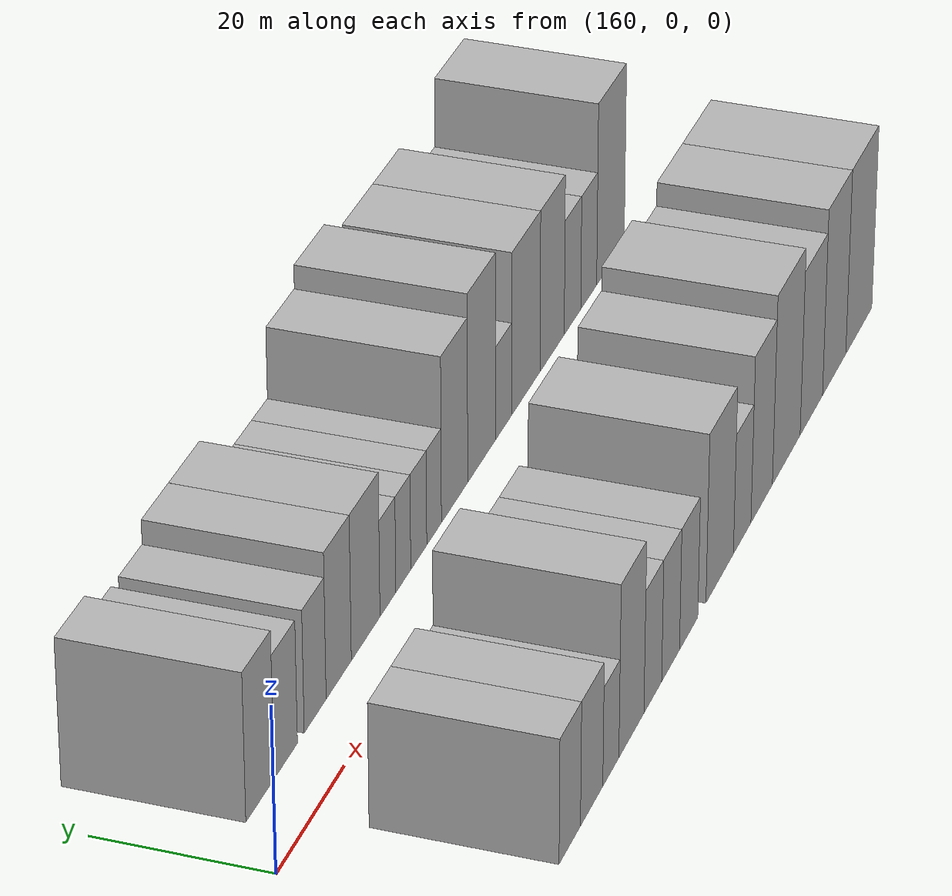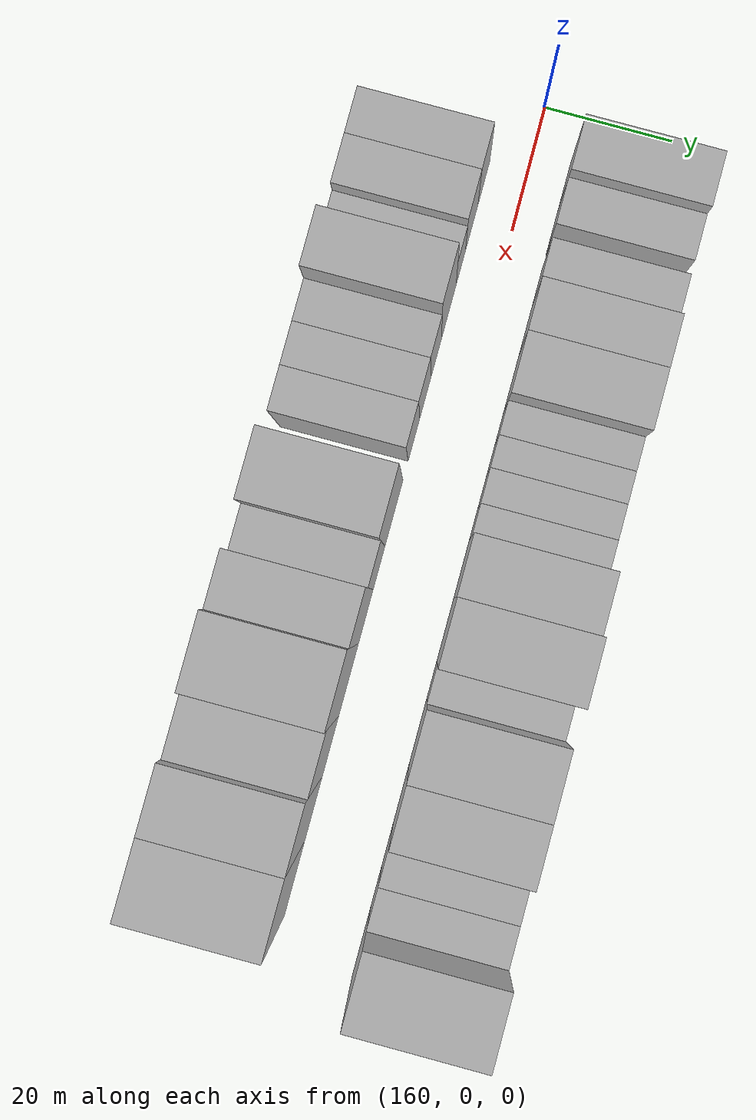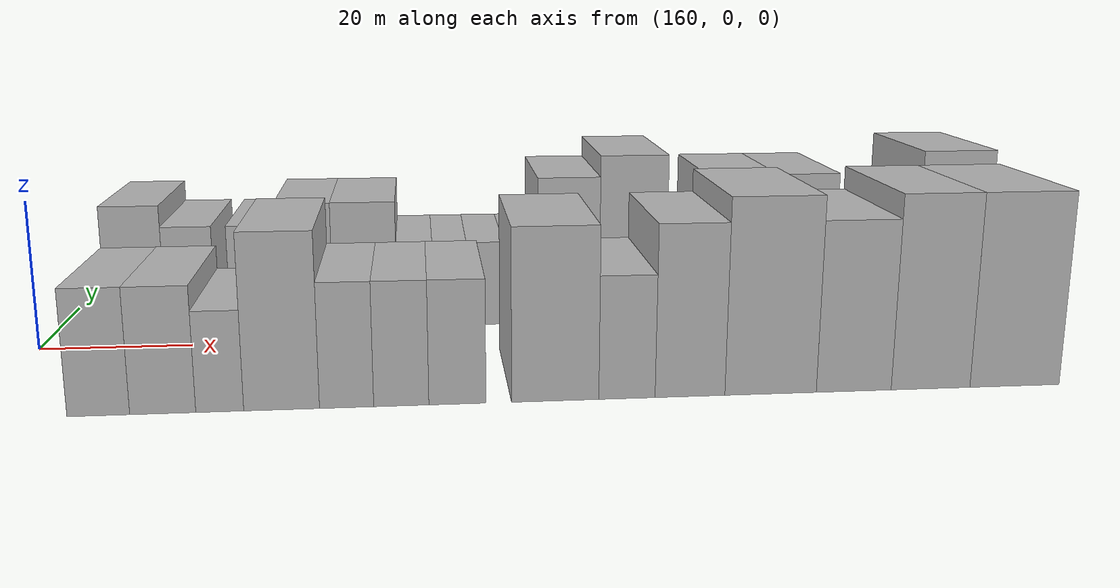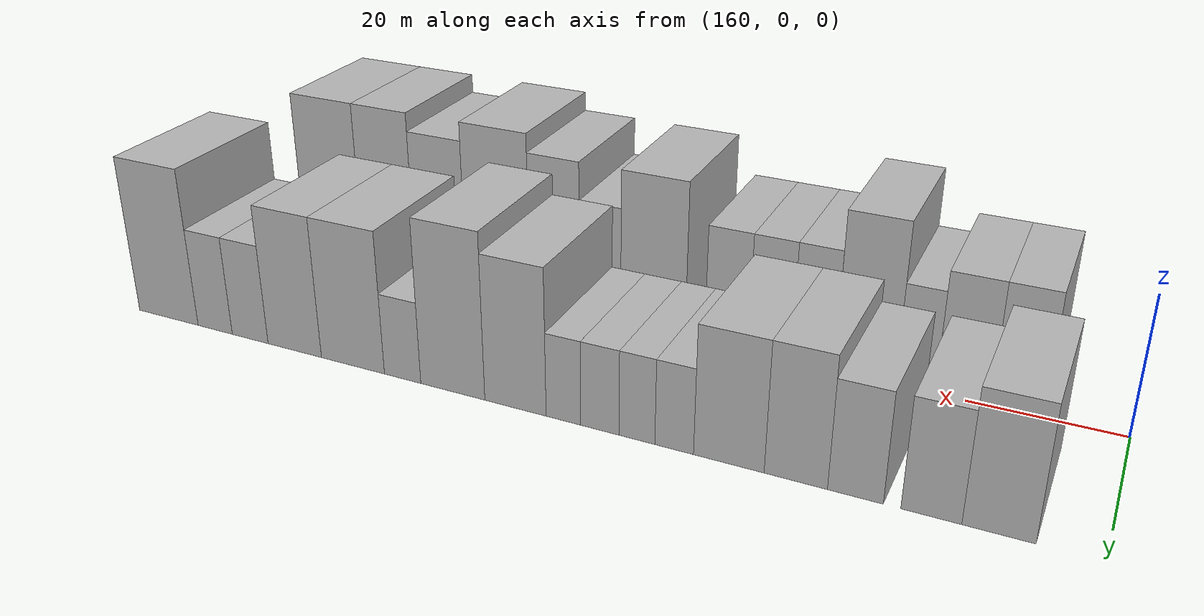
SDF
<sdf version="1.6">
 <world name="default">
  <model name="building_15">
   <static>1</static>
   <pose>171.3655 16.0000 0 0.000000 0.000000 1.570796</pose>
   <link name="link">
    <pose>0 0 9.00 0 0 0</pose>
    <collision name="collision"><geometry><box><size>20.0000 8.0276 18.0000</size></box></geometry></collision>
    <visual name="visual">
     <cast_shadows>0</cast_shadows>
     <geometry><box><size>20.0000 8.0276 18.0000</size></box></geometry>
     <material>
      <script>
       <uri>model://HANNAS_wall/materials/scripts</uri>
       <uri>model://HANNAS_wall/materials/textures</uri>
       <name>vrc/HANNAS_wall</name>
      </script>
     </material>
    </visual>
   </link>
  </model>
  <model name="building_16">
   <static>1</static>
   <pose>178.7961 16.0000 0 0.000000 0.000000 1.570796</pose>
   <link name="link">
    <pose>0 0 7.50 0 0 0</pose>
    <collision name="collision"><geometry><box><size>20.0000 6.8335 15.0000</size></box></geometry></collision>
    <visual name="visual">
     <cast_shadows>0</cast_shadows>
     <geometry><box><size>20.0000 6.8335 15.0000</size></box></geometry>
     <material>
      <script>
       <uri>model://HANNAS_wall/materials/scripts</uri>
       <uri>model://HANNAS_wall/materials/textures</uri>
       <name>vrc/HANNAS_wall</name>
      </script>
     </material>
    </visual>
   </link>
  </model>
  <model name="building_17">
   <static>1</static>
   <pose>187.4880 16.0000 0 0.000000 0.000000 1.570796</pose>
   <link name="link">
    <pose>0 0 7.50 0 0 0</pose>
    <collision name="collision"><geometry><box><size>20.0000 6.5502 15.0000</size></box></geometry></collision>
    <visual name="visual">
     <cast_shadows>0</cast_shadows>
     <geometry><box><size>20.0000 6.5502 15.0000</size></box></geometry>
     <material>
      <script>
       <uri>model://HANNAS_wall/materials/scripts</uri>
       <uri>model://HANNAS_wall/materials/textures</uri>
       <name>vrc/HANNAS_wall</name>
      </script>
     </material>
    </visual>
   </link>
  </model>
  <model name="building_18">
   <static>1</static>
   <pose>194.6058 16.0000 0 0.000000 0.000000 1.570796</pose>
   <link name="link">
    <pose>0 0 9.00 0 0 0</pose>
    <collision name="collision"><geometry><box><size>20.0000 7.6855 18.0000</size></box></geometry></collision>
    <visual name="visual">
     <cast_shadows>0</cast_shadows>
     <geometry><box><size>20.0000 7.6855 18.0000</size></box></geometry>
     <material>
      <script>
       <uri>model://HANNAS_wall/materials/scripts</uri>
       <uri>model://HANNAS_wall/materials/textures</uri>
       <name>vrc/HANNAS_wall</name>
      </script>
     </material>
    </visual>
   </link>
  </model>
  <model name="building_19">
   <static>1</static>
   <pose>202.9166 16.0000 0 0.000000 0.000000 1.570796</pose>
   <link name="link">
    <pose>0 0 9.00 0 0 0</pose>
    <collision name="collision"><geometry><box><size>20.0000 8.9360 18.0000</size></box></geometry></collision>
    <visual name="visual">
     <cast_shadows>0</cast_shadows>
     <geometry><box><size>20.0000 8.9360 18.0000</size></box></geometry>
     <material>
      <script>
       <uri>model://HANNAS_wall/materials/scripts</uri>
       <uri>model://HANNAS_wall/materials/textures</uri>
       <name>vrc/HANNAS_wall</name>
      </script>
     </material>
    </visual>
   </link>
  </model>
  <model name="building_20">
   <static>1</static>
   <pose>209.9119 16.0000 0 0.000000 0.000000 1.570796</pose>
   <link name="link">
    <pose>0 0 6.00 0 0 0</pose>
    <collision name="collision"><geometry><box><size>20.0000 5.0545 12.0000</size></box></geometry></collision>
    <visual name="visual">
     <cast_shadows>0</cast_shadows>
     <geometry><box><size>20.0000 5.0545 12.0000</size></box></geometry>
     <material>
      <script>
       <uri>model://HANNAS_wall/materials/scripts</uri>
       <uri>model://HANNAS_wall/materials/textures</uri>
       <name>vrc/HANNAS_wall</name>
      </script>
     </material>
    </visual>
   </link>
  </model>
  <model name="building_21">
   <static>1</static>
   <pose>214.8417 16.0000 0 0.000000 0.000000 1.570796</pose>
   <link name="link">
    <pose>0 0 6.00 0 0 0</pose>
    <collision name="collision"><geometry><box><size>20.0000 4.8051 12.0000</size></box></geometry></collision>
    <visual name="visual">
     <cast_shadows>0</cast_shadows>
     <geometry><box><size>20.0000 4.8051 12.0000</size></box></geometry>
     <material>
      <script>
       <uri>model://HANNAS_wall/materials/scripts</uri>
       <uri>model://HANNAS_wall/materials/textures</uri>
       <name>vrc/HANNAS_wall</name>
      </script>
     </material>
    </visual>
   </link>
  </model>
  <model name="building_22">
   <static>1</static>
   <pose>219.8590 16.0000 0 0.000000 0.000000 1.570796</pose>
   <link name="link">
    <pose>0 0 6.00 0 0 0</pose>
    <collision name="collision"><geometry><box><size>20.0000 5.2297 12.0000</size></box></geometry></collision>
    <visual name="visual">
     <cast_shadows>0</cast_shadows>
     <geometry><box><size>20.0000 5.2297 12.0000</size></box></geometry>
     <material>
      <script>
       <uri>model://HANNAS_wall/materials/scripts</uri>
       <uri>model://HANNAS_wall/materials/textures</uri>
       <name>vrc/HANNAS_wall</name>
      </script>
     </material>
    </visual>
   </link>
  </model>
  <model name="building_23">
   <static>1</static>
   <pose>224.9013 16.0000 0 0.000000 0.000000 1.570796</pose>
   <link name="link">
    <pose>0 0 6.00 0 0 0</pose>
    <collision name="collision"><geometry><box><size>20.0000 4.8548 12.0000</size></box></geometry></collision>
    <visual name="visual">
     <cast_shadows>0</cast_shadows>
     <geometry><box><size>20.0000 4.8548 12.0000</size></box></geometry>
     <material>
      <script>
       <uri>model://HANNAS_wall/materials/scripts</uri>
       <uri>model://HANNAS_wall/materials/textures</uri>
       <name>vrc/HANNAS_wall</name>
      </script>
     </material>
    </visual>
   </link>
  </model>
  <model name="building_24">
   <static>1</static>
   <pose>231.7651 16.0000 0 0.000000 0.000000 1.570796</pose>
   <link name="link">
    <pose>0 0 10.50 0 0 0</pose>
    <collision name="collision"><geometry><box><size>20.0000 8.8729 21.0000</size></box></geometry></collision>
    <visual name="visual">
     <cast_shadows>0</cast_shadows>
     <geometry><box><size>20.0000 8.8729 21.0000</size></box></geometry>
     <material>
      <script>
       <uri>model://HANNAS_wall/materials/scripts</uri>
       <uri>model://HANNAS_wall/materials/textures</uri>
       <name>vrc/HANNAS_wall</name>
      </script>
     </material>
    </visual>
   </link>
  </model>
  <model name="building_25">
   <static>1</static>
   <pose>241.0345 16.0000 0 0.000000 0.000000 1.570796</pose>
   <link name="link">
    <pose>0 0 12.00 0 0 0</pose>
    <collision name="collision"><geometry><box><size>20.0000 9.6660 24.0000</size></box></geometry></collision>
    <visual name="visual">
     <cast_shadows>0</cast_shadows>
     <geometry><box><size>20.0000 9.6660 24.0000</size></box></geometry>
     <material>
      <script>
       <uri>model://HANNAS_wall/materials/scripts</uri>
       <uri>model://HANNAS_wall/materials/textures</uri>
       <name>vrc/HANNAS_wall</name>
      </script>
     </material>
    </visual>
   </link>
  </model>
  <model name="building_26">
   <static>1</static>
   <pose>248.7030 16.0000 0 0.000000 0.000000 1.570796</pose>
   <link name="link">
    <pose>0 0 6.00 0 0 0</pose>
    <collision name="collision"><geometry><box><size>20.0000 5.6709 12.0000</size></box></geometry></collision>
    <visual name="visual">
     <cast_shadows>0</cast_shadows>
     <geometry><box><size>20.0000 5.6709 12.0000</size></box></geometry>
     <material>
      <script>
       <uri>model://HANNAS_wall/materials/scripts</uri>
       <uri>model://HANNAS_wall/materials/textures</uri>
       <name>vrc/HANNAS_wall</name>
      </script>
     </material>
    </visual>
   </link>
  </model>
  <model name="building_27">
   <static>1</static>
   <pose>256.6299 16.0000 0 0.000000 0.000000 1.570796</pose>
   <link name="link">
    <pose>0 0 10.50 0 0 0</pose>
    <collision name="collision"><geometry><box><size>20.0000 10.1831 21.0000</size></box></geometry></collision>
    <visual name="visual">
     <cast_shadows>0</cast_shadows>
     <geometry><box><size>20.0000 10.1831 21.0000</size></box></geometry>
     <material>
      <script>
       <uri>model://HANNAS_wall/materials/scripts</uri>
       <uri>model://HANNAS_wall/materials/textures</uri>
       <name>vrc/HANNAS_wall</name>
      </script>
     </material>
    </visual>
   </link>
  </model>
  <model name="building_28">
   <static>1</static>
   <pose>266.2097 16.0000 0 0.000000 0.000000 1.570796</pose>
   <link name="link">
    <pose>0 0 10.50 0 0 0</pose>
    <collision name="collision"><geometry><box><size>20.0000 8.9764 21.0000</size></box></geometry></collision>
    <visual name="visual">
     <cast_shadows>0</cast_shadows>
     <geometry><box><size>20.0000 8.9764 21.0000</size></box></geometry>
     <material>
      <script>
       <uri>model://HANNAS_wall/materials/scripts</uri>
       <uri>model://HANNAS_wall/materials/textures</uri>
       <name>vrc/HANNAS_wall</name>
      </script>
     </material>
    </visual>
   </link>
  </model>
  <model name="building_29">
   <static>1</static>
   <pose>273.8102 16.0000 0 0.000000 0.000000 1.570796</pose>
   <link name="link">
    <pose>0 0 7.50 0 0 0</pose>
    <collision name="collision"><geometry><box><size>20.0000 6.2247 15.0000</size></box></geometry></collision>
    <visual name="visual">
     <cast_shadows>0</cast_shadows>
     <geometry><box><size>20.0000 6.2247 15.0000</size></box></geometry>
     <material>
      <script>
       <uri>model://HANNAS_wall/materials/scripts</uri>
       <uri>model://HANNAS_wall/materials/textures</uri>
       <name>vrc/HANNAS_wall</name>
      </script>
     </material>
    </visual>
   </link>
  </model>
  <model name="building_30">
   <static>1</static>
   <pose>279.9654 16.0000 0 0.000000 0.000000 1.570796</pose>
   <link name="link">
    <pose>0 0 7.50 0 0 0</pose>
    <collision name="collision"><geometry><box><size>20.0000 6.0856 15.0000</size></box></geometry></collision>
    <visual name="visual">
     <cast_shadows>0</cast_shadows>
     <geometry><box><size>20.0000 6.0856 15.0000</size></box></geometry>
     <material>
      <script>
       <uri>model://HANNAS_wall/materials/scripts</uri>
       <uri>model://HANNAS_wall/materials/textures</uri>
       <name>vrc/HANNAS_wall</name>
      </script>
     </material>
    </visual>
   </link>
  </model>
  <model name="building_31">
   <static>1</static>
   <pose>288.3852 16.0000 0 0.000000 0.000000 1.570796</pose>
   <link name="link">
    <pose>0 0 12.00 0 0 0</pose>
    <collision name="collision"><geometry><box><size>20.0000 10.7540 24.0000</size></box></geometry></collision>
    <visual name="visual">
     <cast_shadows>0</cast_shadows>
     <geometry><box><size>20.0000 10.7540 24.0000</size></box></geometry>
     <material>
      <script>
       <uri>model://HANNAS_wall/materials/scripts</uri>
       <uri>model://HANNAS_wall/materials/textures</uri>
       <name>vrc/HANNAS_wall</name>
      </script>
     </material>
    </visual>
   </link>
  </model>
  <model name="building_47">
   <static>1</static>
   <pose>173.9678 -16.0000 0 0.000000 0.000000 1.570796</pose>
   <link name="link">
    <pose>0 0 7.50 0 0 0</pose>
    <collision name="collision"><geometry><box><size>20.0000 6.9427 15.0000</size></box></geometry></collision>
    <visual name="visual">
     <cast_shadows>0</cast_shadows>
     <geometry><box><size>20.0000 6.9427 15.0000</size></box></geometry>
     <material>
      <script>
       <uri>model://HANNAS_wall/materials/scripts</uri>
       <uri>model://HANNAS_wall/materials/textures</uri>
       <name>vrc/HANNAS_wall</name>
      </script>
     </material>
    </visual>
   </link>
  </model>
  <model name="building_48">
   <static>1</static>
   <pose>181.1269 -16.0000 0 0.000000 0.000000 1.570796</pose>
   <link name="link">
    <pose>0 0 7.50 0 0 0</pose>
    <collision name="collision"><geometry><box><size>20.0000 7.3755 15.0000</size></box></geometry></collision>
    <visual name="visual">
     <cast_shadows>0</cast_shadows>
     <geometry><box><size>20.0000 7.3755 15.0000</size></box></geometry>
     <material>
      <script>
       <uri>model://HANNAS_wall/materials/scripts</uri>
       <uri>model://HANNAS_wall/materials/textures</uri>
       <name>vrc/HANNAS_wall</name>
      </script>
     </material>
    </visual>
   </link>
  </model>
  <model name="building_49">
   <static>1</static>
   <pose>187.5126 -16.0000 0 0.000000 0.000000 1.570796</pose>
   <link name="link">
    <pose>0 0 6.00 0 0 0</pose>
    <collision name="collision"><geometry><box><size>20.0000 5.3957 12.0000</size></box></geometry></collision>
    <visual name="visual">
     <cast_shadows>0</cast_shadows>
     <geometry><box><size>20.0000 5.3957 12.0000</size></box></geometry>
     <material>
      <script>
       <uri>model://HANNAS_wall/materials/scripts</uri>
       <uri>model://HANNAS_wall/materials/textures</uri>
       <name>vrc/HANNAS_wall</name>
      </script>
     </material>
    </visual>
   </link>
  </model>
  <model name="building_50">
   <static>1</static>
   <pose>194.5124 -16.0000 0 0.000000 0.000000 1.570796</pose>
   <link name="link">
    <pose>0 0 10.50 0 0 0</pose>
    <collision name="collision"><geometry><box><size>20.0000 8.6040 21.0000</size></box></geometry></collision>
    <visual name="visual">
     <cast_shadows>0</cast_shadows>
     <geometry><box><size>20.0000 8.6040 21.0000</size></box></geometry>
     <material>
      <script>
       <uri>model://HANNAS_wall/materials/scripts</uri>
       <uri>model://HANNAS_wall/materials/textures</uri>
       <name>vrc/HANNAS_wall</name>
      </script>
     </material>
    </visual>
   </link>
  </model>
  <model name="building_51">
   <static>1</static>
   <pose>201.9199 -16.0000 0 0.000000 0.000000 1.570796</pose>
   <link name="link">
    <pose>0 0 7.50 0 0 0</pose>
    <collision name="collision"><geometry><box><size>20.0000 6.2108 15.0000</size></box></geometry></collision>
    <visual name="visual">
     <cast_shadows>0</cast_shadows>
     <geometry><box><size>20.0000 6.2108 15.0000</size></box></geometry>
     <material>
      <script>
       <uri>model://HANNAS_wall/materials/scripts</uri>
       <uri>model://HANNAS_wall/materials/textures</uri>
       <name>vrc/HANNAS_wall</name>
      </script>
     </material>
    </visual>
   </link>
  </model>
  <model name="building_52">
   <static>1</static>
   <pose>208.2130 -16.0000 0 0.000000 0.000000 1.570796</pose>
   <link name="link">
    <pose>0 0 7.50 0 0 0</pose>
    <collision name="collision"><geometry><box><size>20.0000 6.3754 15.0000</size></box></geometry></collision>
    <visual name="visual">
     <cast_shadows>0</cast_shadows>
     <geometry><box><size>20.0000 6.3754 15.0000</size></box></geometry>
     <material>
      <script>
       <uri>model://HANNAS_wall/materials/scripts</uri>
       <uri>model://HANNAS_wall/materials/textures</uri>
       <name>vrc/HANNAS_wall</name>
      </script>
     </material>
    </visual>
   </link>
  </model>
  <model name="building_53">
   <static>1</static>
   <pose>214.7295 -16.0000 0 0.000000 0.000000 1.570796</pose>
   <link name="link">
    <pose>0 0 7.50 0 0 0</pose>
    <collision name="collision"><geometry><box><size>20.0000 6.6577 15.0000</size></box></geometry></collision>
    <visual name="visual">
     <cast_shadows>0</cast_shadows>
     <geometry><box><size>20.0000 6.6577 15.0000</size></box></geometry>
     <material>
      <script>
       <uri>model://HANNAS_wall/materials/scripts</uri>
       <uri>model://HANNAS_wall/materials/textures</uri>
       <name>vrc/HANNAS_wall</name>
      </script>
     </material>
    </visual>
   </link>
  </model>
  <model name="building_54">
   <static>1</static>
   <pose>226.2147 -16.0000 0 0.000000 0.000000 1.570796</pose>
   <link name="link">
    <pose>0 0 10.50 0 0 0</pose>
    <collision name="collision"><geometry><box><size>20.0000 10.3127 21.0000</size></box></geometry></collision>
    <visual name="visual">
     <cast_shadows>0</cast_shadows>
     <geometry><box><size>20.0000 10.3127 21.0000</size></box></geometry>
     <material>
      <script>
       <uri>model://HANNAS_wall/materials/scripts</uri>
       <uri>model://HANNAS_wall/materials/textures</uri>
       <name>vrc/HANNAS_wall</name>
      </script>
     </material>
    </visual>
   </link>
  </model>
  <model name="building_55">
   <static>1</static>
   <pose>234.7326 -16.0000 0 0.000000 0.000000 1.570796</pose>
   <link name="link">
    <pose>0 0 7.50 0 0 0</pose>
    <collision name="collision"><geometry><box><size>20.0000 6.7232 15.0000</size></box></geometry></collision>
    <visual name="visual">
     <cast_shadows>0</cast_shadows>
     <geometry><box><size>20.0000 6.7232 15.0000</size></box></geometry>
     <material>
      <script>
       <uri>model://HANNAS_wall/materials/scripts</uri>
       <uri>model://HANNAS_wall/materials/textures</uri>
       <name>vrc/HANNAS_wall</name>
      </script>
     </material>
    </visual>
   </link>
  </model>
  <model name="building_56">
   <static>1</static>
   <pose>242.3062 -16.0000 0 0.000000 0.000000 1.570796</pose>
   <link name="link">
    <pose>0 0 10.50 0 0 0</pose>
    <collision name="collision"><geometry><box><size>20.0000 8.4240 21.0000</size></box></geometry></collision>
    <visual name="visual">
     <cast_shadows>0</cast_shadows>
     <geometry><box><size>20.0000 8.4240 21.0000</size></box></geometry>
     <material>
      <script>
       <uri>model://HANNAS_wall/materials/scripts</uri>
       <uri>model://HANNAS_wall/materials/textures</uri>
       <name>vrc/HANNAS_wall</name>
      </script>
     </material>
    </visual>
   </link>
  </model>
  <model name="building_57">
   <static>1</static>
   <pose>252.1002 -16.0000 0 0.000000 0.000000 1.570796</pose>
   <link name="link">
    <pose>0 0 12.00 0 0 0</pose>
    <collision name="collision"><geometry><box><size>20.0000 11.1639 24.0000</size></box></geometry></collision>
    <visual name="visual">
     <cast_shadows>0</cast_shadows>
     <geometry><box><size>20.0000 11.1639 24.0000</size></box></geometry>
     <material>
      <script>
       <uri>model://HANNAS_wall/materials/scripts</uri>
       <uri>model://HANNAS_wall/materials/textures</uri>
       <name>vrc/HANNAS_wall</name>
      </script>
     </material>
    </visual>
   </link>
  </model>
  <model name="building_58">
   <static>1</static>
   <pose>262.3147 -16.0000 0 0.000000 0.000000 1.570796</pose>
   <link name="link">
    <pose>0 0 10.50 0 0 0</pose>
    <collision name="collision"><geometry><box><size>20.0000 9.2650 21.0000</size></box></geometry></collision>
    <visual name="visual">
     <cast_shadows>0</cast_shadows>
     <geometry><box><size>20.0000 9.2650 21.0000</size></box></geometry>
     <material>
      <script>
       <uri>model://HANNAS_wall/materials/scripts</uri>
       <uri>model://HANNAS_wall/materials/textures</uri>
       <name>vrc/HANNAS_wall</name>
      </script>
     </material>
    </visual>
   </link>
  </model>
  <model name="building_59">
   <static>1</static>
   <pose>271.8779 -16.0000 0 0.000000 0.000000 1.570796</pose>
   <link name="link">
    <pose>0 0 12.00 0 0 0</pose>
    <collision name="collision"><geometry><box><size>20.0000 9.8615 24.0000</size></box></geometry></collision>
    <visual name="visual">
     <cast_shadows>0</cast_shadows>
     <geometry><box><size>20.0000 9.8615 24.0000</size></box></geometry>
     <material>
      <script>
       <uri>model://HANNAS_wall/materials/scripts</uri>
       <uri>model://HANNAS_wall/materials/textures</uri>
       <name>vrc/HANNAS_wall</name>
      </script>
     </material>
    </visual>
   </link>
  </model>
  <model name="building_60">
   <static>1</static>
   <pose>282.4583 -16.0000 0 0.000000 0.000000 1.570796</pose>
   <link name="link">
    <pose>0 0 12.00 0 0 0</pose>
    <collision name="collision"><geometry><box><size>20.0000 11.2992 24.0000</size></box></geometry></collision>
    <visual name="visual">
     <cast_shadows>0</cast_shadows>
     <geometry><box><size>20.0000 11.2992 24.0000</size></box></geometry>
     <material>
      <script>
       <uri>model://HANNAS_wall/materials/scripts</uri>
       <uri>model://HANNAS_wall/materials/textures</uri>
       <name>vrc/HANNAS_wall</name>
      </script>
     </material>
    </visual>
   </link>
  </model>
 </world>
</sdf>
